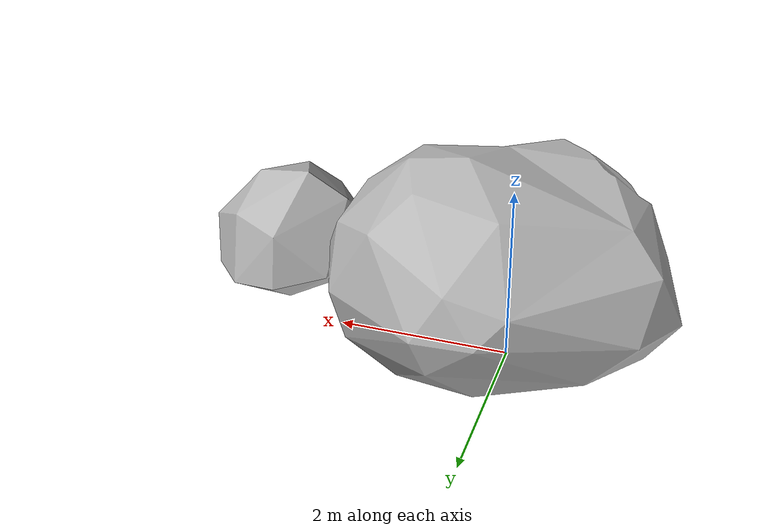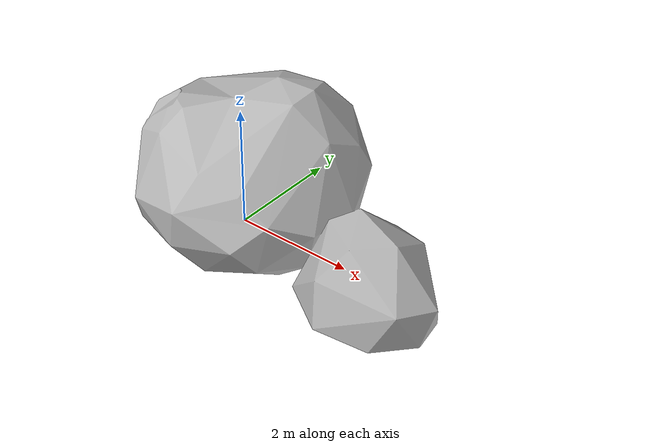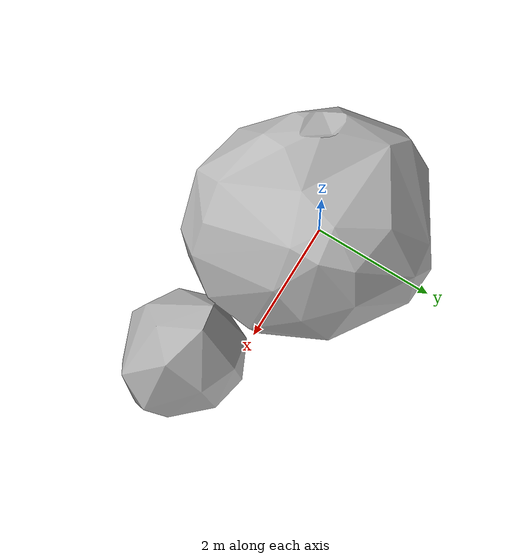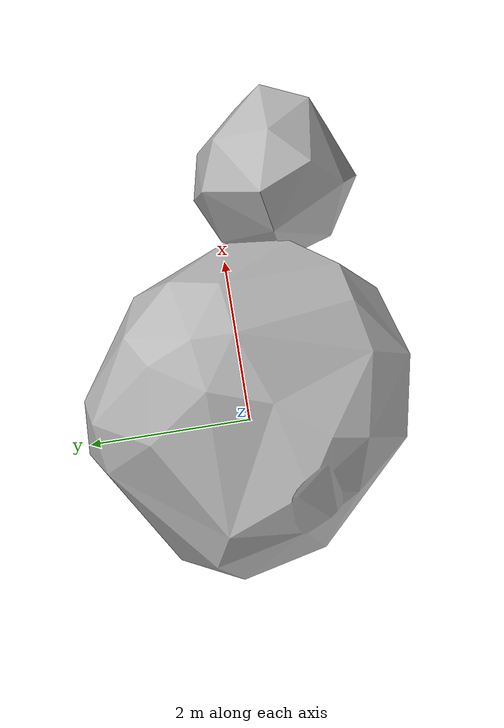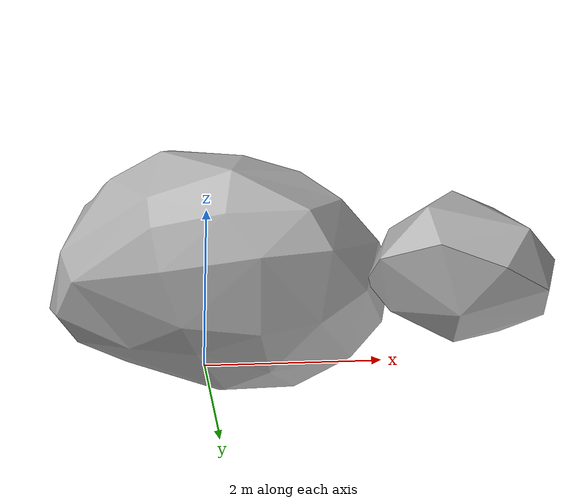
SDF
<sdf version="1.7">
<model name="rocks_1">
    <static>true</static>
    <link name="rocks_1">
        <pose>0 0 0 0 0 0</pose>
        <collision name="rocks_1_collision">
            <geometry>
                <mesh>
                    <uri>model://rocks_1/meshes/rocks_1.dae</uri>
                </mesh>
            </geometry>
        </collision>
        <visual name="rocks_1_visual">
            <geometry>
                <mesh>
                    <uri>model://rocks_1/meshes/rocks_1.dae</uri>
                </mesh>
            </geometry>
        </visual>
    </link>
</model>
</sdf>
